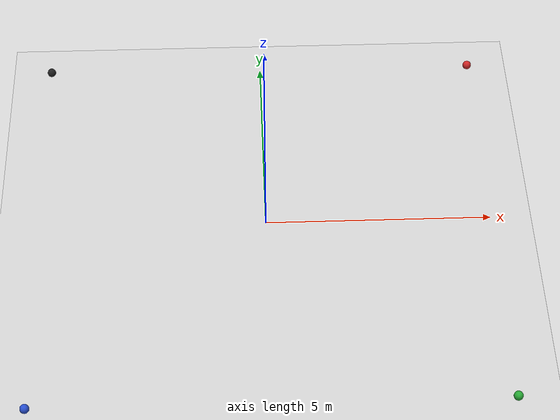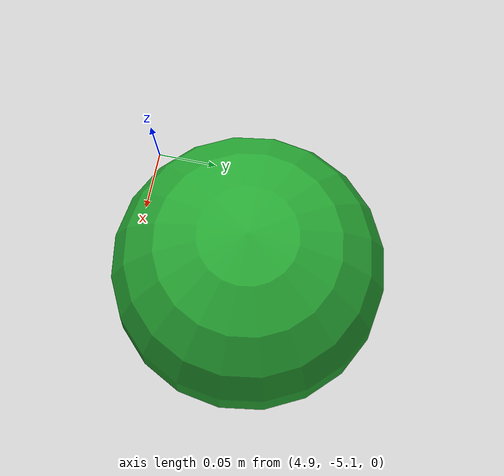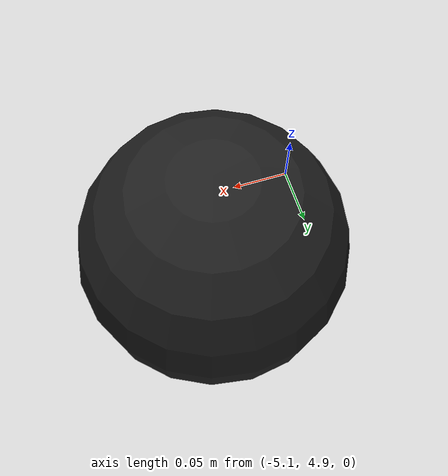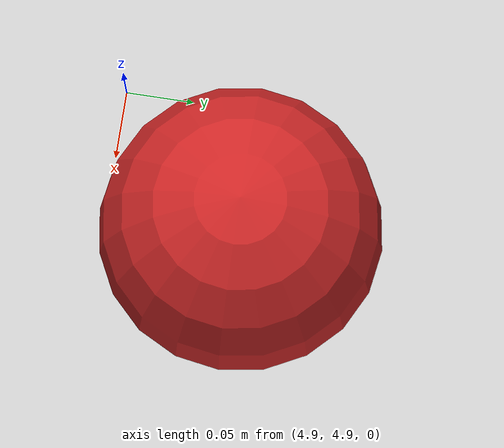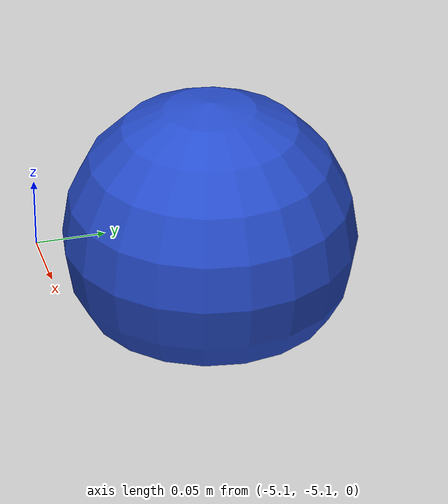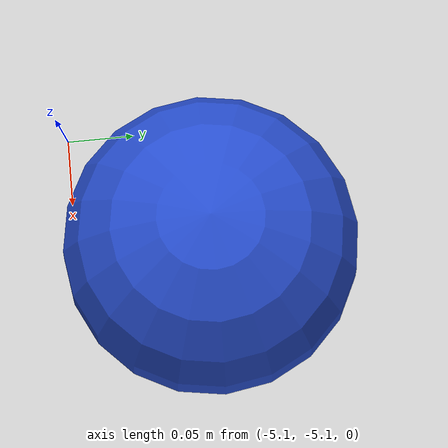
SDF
<?xml version="1.0" ?>
<sdf version='1.4'>
  <world name='Pioneer Waypoints'>
    <!-- A global light source -->
    <include>
      <uri>model://sun</uri>
    </include>
    <!-- A ground plane -->
    <include>
      <uri>model://ground_plane</uri>
    </include>

    <model name='WP1'>
      <pose>5 5 0.05 0 -0 0</pose>
      <static>true</static>
      <link name='link'>
        <visual name='visual'>
          <geometry>
            <sphere>
              <radius>0.1</radius>
            </sphere>
          </geometry>
          <material>
            <script>
              <uri>file://media/materials/scripts/gazebo.material</uri>
              <name>Gazebo/Red</name>
            </script>
          </material>
        </visual>
      </link>
    </model>

    <model name='WP2'>
      <pose>5 -5 0.05 0 -0 0</pose>
      <static>true</static>
      <link name='link'>
        <visual name='visual'>
          <geometry>
            <sphere>
              <radius>0.1</radius>
            </sphere>
          </geometry>
          <material>
            <script>
              <uri>file://media/materials/scripts/gazebo.material</uri>
              <name>Gazebo/Green</name>
            </script>
          </material>
        </visual>
      </link>
    </model>

    <model name='WP3'>
      <pose>-5 -5 0.05 0 -0 0</pose>
      <static>true</static>
      <link name='link'>
        <visual name='visual'>
          <geometry>
            <sphere>
              <radius>0.1</radius>
            </sphere>
          </geometry>
          <material>
            <script>
              <uri>file://media/materials/scripts/gazebo.material</uri>
              <name>Gazebo/Blue</name>
            </script>
          </material>
        </visual>
      </link>
    </model>

    <model name='WP4'>
      <pose>-5 5 0.1 0 -0 0</pose>
      <static>true</static>
      <link name='link'>
        <visual name='visual'>
          <geometry>
            <sphere>
              <radius>0.1</radius>
            </sphere>
          </geometry>
          <material>
            <script>
              <uri>file://media/materials/scripts/gazebo.material</uri>
              <name>Gazebo/Black</name>
            </script>
          </material>
        </visual>
      </link>
    </model>

    <gui fullscreen='0'>
      <camera name='user_camera'>
        <pose>13.8844 -11.835 5.65244 0 0.275643 2.35619</pose>
        <view_controller>orbit</view_controller>
      </camera>
    </gui>
  </world>
</sdf>
